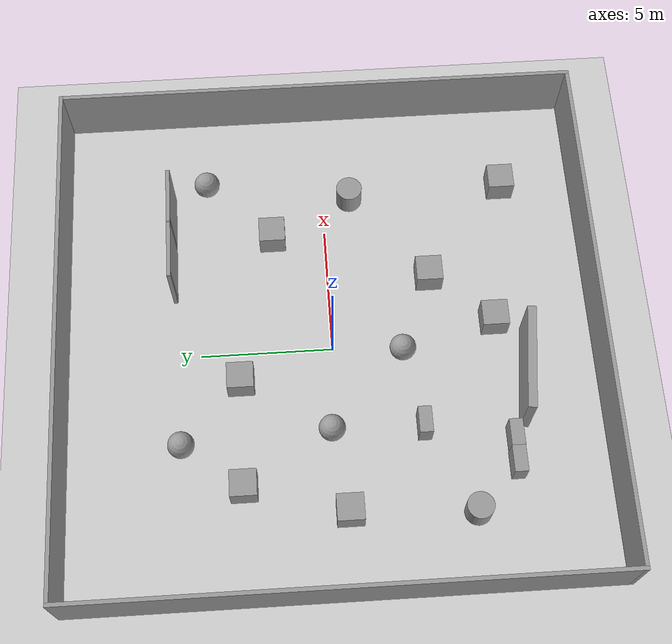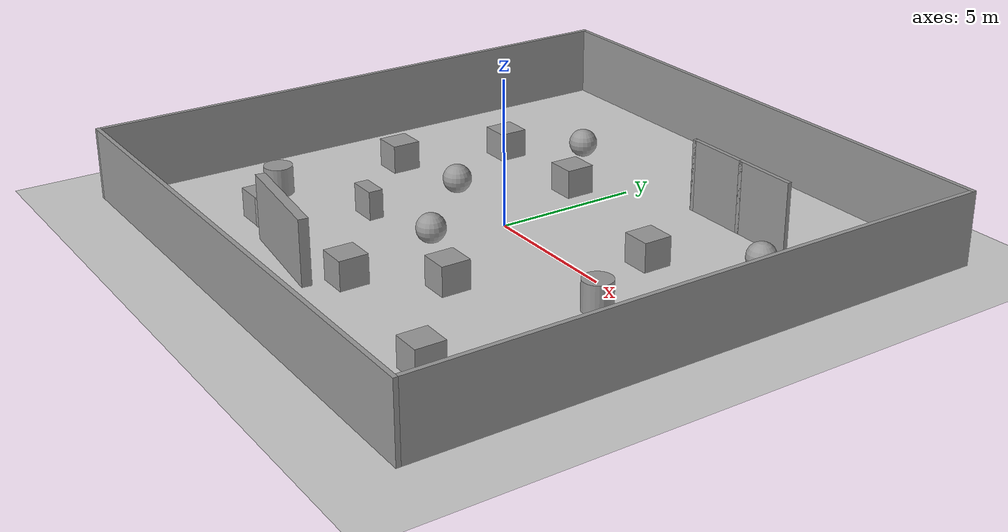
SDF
<sdf version="1.7">
 <world name="default">
  <light name="sun" type="directional">
   <pose>0 0 10 0 -0 0</pose>
   <diffuse>0.8 0.8 0.8 1</diffuse>
   <specular>0.2 0.2 0.2 1</specular>
   <attenuation>
    <range>1000</range>
    <constant>0.9</constant>
    <linear>0.01</linear>
    <quadratic>0.001</quadratic>
   </attenuation>
   <direction>-0.5 0.1 -0.9</direction>
   <spot><inner_angle>0</inner_angle><outer_angle>0</outer_angle><falloff>0</falloff></spot>
  </light>
  <model name="ground_plane">
   <static>1</static>
   <link name="link">
    <collision name="collision">
     <geometry><plane><normal>0 0 1</normal><size>100 100</size></plane></geometry>
     <surface><friction><ode><mu>100</mu><mu2>50</mu2></ode></friction></surface>
    </collision>
    <visual name="visual">
     <cast_shadows>0</cast_shadows>
     <geometry><plane><normal>0 0 1</normal><size>100 100</size></plane></geometry>
     <material>
      <script><uri>file://media/materials/scripts/gazebo.material</uri><name>Gazebo/Grey</name></script>
     </material>
    </visual>
   </link>
  </model>
  <gravity>0 0 -9.8</gravity>
  <magnetic_field>6e-06 2.3e-05 -4.2e-05</magnetic_field>
  <atmosphere type="adiabatic"/>
  <physics type="ode">
   <max_step_size>0.001</max_step_size>
   <real_time_factor>1</real_time_factor>
   <real_time_update_rate>1000</real_time_update_rate>
  </physics>
  <scene><ambient>0.4 0.4 0.4 1</ambient><background>0.7 0.7 0.7 1</background><shadows>1</shadows></scene>
  <spherical_coordinates>
   <surface_model>EARTH_WGS84</surface_model>
   <latitude_deg>0</latitude_deg>
   <longitude_deg>0</longitude_deg>
   <elevation>0</elevation>
   <heading_deg>0</heading_deg>
  </spherical_coordinates>
  <model name="wall_1">
   <link name="Wall_10">
    <pose>9.925 0 0 0 0 -1.5708</pose>
    <visual name="Wall_10_Visual">
     <pose>0 0 1.25 0 -0 0</pose>
     <geometry><box><size>20.25 0.15 2.5</size></box></geometry>
     <material>
      <script><uri>file://media/materials/scripts/gazebo.material</uri><name>Gazebo/Grey</name></script>
      <ambient>1 1 1 1</ambient>
      <shader type="pixel"/>
     </material>
     <meta><layer>0</layer></meta>
    </visual>
    <collision name="Wall_10_Collision">
     <pose>0 0 1.25 0 -0 0</pose>
     <geometry><box><size>20.25 0.15 2.5</size></box></geometry>
     <surface>
      <friction>
       <ode><mu>1</mu><mu2>1</mu2><fdir1>0 0 0</fdir1><slip1>0</slip1><slip2>0</slip2></ode>
       <torsional>
        <coefficient>1</coefficient>
        <patch_radius>0</patch_radius>
        <surface_radius>0</surface_radius>
        <use_patch_radius>1</use_patch_radius>
        <ode><slip>0</slip></ode>
       </torsional>
      </friction>
      <bounce><restitution_coefficient>0</restitution_coefficient><threshold>1e+06</threshold></bounce>
      <contact>
       <collide_without_contact>0</collide_without_contact>
       <collide_without_contact_bitmask>1</collide_without_contact_bitmask>
       <collide_bitmask>1</collide_bitmask>
       <ode>
        <soft_cfm>0</soft_cfm>
        <soft_erp>0.2</soft_erp>
        <kp>1e+13</kp>
        <kd>1</kd>
        <max_vel>0.01</max_vel>
        <min_depth>0</min_depth>
       </ode>
       <bullet>
        <split_impulse>1</split_impulse>
        <split_impulse_penetration_threshold>-0.01</split_impulse_penetration_threshold>
        <soft_cfm>0</soft_cfm>
        <soft_erp>0.2</soft_erp>
        <kp>1e+13</kp>
        <kd>1</kd>
       </bullet>
      </contact>
     </surface>
    </collision>
   </link>
   <link name="Wall_11">
    <pose>0 -10.05 0 0 -0 3.14159</pose>
    <visual name="Wall_11_Visual">
     <pose>0 0 1.25 0 -0 0</pose>
     <geometry><box><size>20 0.15 2.5</size></box></geometry>
     <material>
      <script><uri>file://media/materials/scripts/gazebo.material</uri><name>Gazebo/Grey</name></script>
      <ambient>1 1 1 1</ambient>
      <shader type="pixel"/>
     </material>
     <meta><layer>0</layer></meta>
    </visual>
    <collision name="Wall_11_Collision">
     <pose>0 0 1.25 0 -0 0</pose>
     <geometry><box><size>20 0.15 2.5</size></box></geometry>
     <surface>
      <friction>
       <ode><mu>1</mu><mu2>1</mu2><fdir1>0 0 0</fdir1><slip1>0</slip1><slip2>0</slip2></ode>
       <torsional>
        <coefficient>1</coefficient>
        <patch_radius>0</patch_radius>
        <surface_radius>0</surface_radius>
        <use_patch_radius>1</use_patch_radius>
        <ode><slip>0</slip></ode>
       </torsional>
      </friction>
      <bounce><restitution_coefficient>0</restitution_coefficient><threshold>1e+06</threshold></bounce>
      <contact>
       <collide_without_contact>0</collide_without_contact>
       <collide_without_contact_bitmask>1</collide_without_contact_bitmask>
       <collide_bitmask>1</collide_bitmask>
       <ode>
        <soft_cfm>0</soft_cfm>
        <soft_erp>0.2</soft_erp>
        <kp>1e+13</kp>
        <kd>1</kd>
        <max_vel>0.01</max_vel>
        <min_depth>0</min_depth>
       </ode>
       <bullet>
        <split_impulse>1</split_impulse>
        <split_impulse_penetration_threshold>-0.01</split_impulse_penetration_threshold>
        <soft_cfm>0</soft_cfm>
        <soft_erp>0.2</soft_erp>
        <kp>1e+13</kp>
        <kd>1</kd>
       </bullet>
      </contact>
     </surface>
    </collision>
   </link>
   <link name="Wall_12">
    <pose>-9.925 0 0 0 -0 1.5708</pose>
    <visual name="Wall_12_Visual">
     <pose>0 0 1.25 0 -0 0</pose>
     <geometry><box><size>20.25 0.15 2.5</size></box></geometry>
     <material>
      <script><uri>file://media/materials/scripts/gazebo.material</uri><name>Gazebo/Grey</name></script>
      <ambient>1 1 1 1</ambient>
      <shader type="pixel"/>
     </material>
     <meta><layer>0</layer></meta>
    </visual>
    <collision name="Wall_12_Collision">
     <pose>0 0 1.25 0 -0 0</pose>
     <geometry><box><size>20.25 0.15 2.5</size></box></geometry>
     <surface>
      <friction>
       <ode><mu>1</mu><mu2>1</mu2><fdir1>0 0 0</fdir1><slip1>0</slip1><slip2>0</slip2></ode>
       <torsional>
        <coefficient>1</coefficient>
        <patch_radius>0</patch_radius>
        <surface_radius>0</surface_radius>
        <use_patch_radius>1</use_patch_radius>
        <ode><slip>0</slip></ode>
       </torsional>
      </friction>
      <bounce><restitution_coefficient>0</restitution_coefficient><threshold>1e+06</threshold></bounce>
      <contact>
       <collide_without_contact>0</collide_without_contact>
       <collide_without_contact_bitmask>1</collide_without_contact_bitmask>
       <collide_bitmask>1</collide_bitmask>
       <ode>
        <soft_cfm>0</soft_cfm>
        <soft_erp>0.2</soft_erp>
        <kp>1e+13</kp>
        <kd>1</kd>
        <max_vel>0.01</max_vel>
        <min_depth>0</min_depth>
       </ode>
       <bullet>
        <split_impulse>1</split_impulse>
        <split_impulse_penetration_threshold>-0.01</split_impulse_penetration_threshold>
        <soft_cfm>0</soft_cfm>
        <soft_erp>0.2</soft_erp>
        <kp>1e+13</kp>
        <kd>1</kd>
       </bullet>
      </contact>
     </surface>
    </collision>
   </link>
   <link name="Wall_9">
    <pose>0 10.05 0 0 -0 0</pose>
    <visual name="Wall_9_Visual">
     <pose>0 0 1.25 0 -0 0</pose>
     <geometry><box><size>20 0.15 2.5</size></box></geometry>
     <material>
      <script><uri>file://media/materials/scripts/gazebo.material</uri><name>Gazebo/Grey</name></script>
      <ambient>1 1 1 1</ambient>
      <shader type="pixel"/>
     </material>
     <meta><layer>0</layer></meta>
    </visual>
    <collision name="Wall_9_Collision">
     <pose>0 0 1.25 0 -0 0</pose>
     <geometry><box><size>20 0.15 2.5</size></box></geometry>
     <surface>
      <friction>
       <ode><mu>1</mu><mu2>1</mu2><fdir1>0 0 0</fdir1><slip1>0</slip1><slip2>0</slip2></ode>
       <torsional>
        <coefficient>1</coefficient>
        <patch_radius>0</patch_radius>
        <surface_radius>0</surface_radius>
        <use_patch_radius>1</use_patch_radius>
        <ode><slip>0</slip></ode>
       </torsional>
      </friction>
      <bounce><restitution_coefficient>0</restitution_coefficient><threshold>1e+06</threshold></bounce>
      <contact>
       <collide_without_contact>0</collide_without_contact>
       <collide_without_contact_bitmask>1</collide_without_contact_bitmask>
       <collide_bitmask>1</collide_bitmask>
       <ode>
        <soft_cfm>0</soft_cfm>
        <soft_erp>0.2</soft_erp>
        <kp>1e+13</kp>
        <kd>1</kd>
        <max_vel>0.01</max_vel>
        <min_depth>0</min_depth>
       </ode>
       <bullet>
        <split_impulse>1</split_impulse>
        <split_impulse_penetration_threshold>-0.01</split_impulse_penetration_threshold>
        <soft_cfm>0</soft_cfm>
        <soft_erp>0.2</soft_erp>
        <kp>1e+13</kp>
        <kd>1</kd>
       </bullet>
      </contact>
     </surface>
    </collision>
   </link>
   <static>1</static>
   <pose>0.4353 0.06283 0 0 -0 0</pose>
  </model>
  <model name="wall1">
   <pose>7.22203 7.50057 0 0 -0 0</pose>
   <link name="Wall_0">
    <collision name="Wall_0_Collision">
     <geometry><box><size>2.25 0.15 2.5</size></box></geometry>
     <pose>0 0 1.25 0 -0 0</pose>
    </collision>
    <visual name="Wall_0_Visual">
     <pose>0 0 1.25 0 -0 0</pose>
     <geometry><box><size>2.25 0.15 2.5</size></box></geometry>
     <material>
      <script><uri>file://media/materials/scripts/gazebo.material</uri><name>Gazebo/Grey</name></script>
      <ambient>1 1 1 1</ambient>
     </material>
     <meta><layer>0</layer></meta>
    </visual>
    <pose>-1.5175 -1.5575 0 0 -0 3.14159</pose>
   </link>
   <link name="Wall_1">
    <collision name="Wall_1_Collision">
     <geometry><box><size>0.16 0.15 2.5</size></box></geometry>
     <pose>0 0 1.25 0 -0 0</pose>
    </collision>
    <visual name="Wall_1_Visual">
     <pose>0 0 1.25 0 -0 0</pose>
     <geometry><box><size>0.16 0.15 2.5</size></box></geometry>
     <material>
      <script><uri>file://media/materials/scripts/gazebo.material</uri><name>Gazebo/Grey</name></script>
      <ambient>1 1 1 1</ambient>
     </material>
     <meta><layer>0</layer></meta>
    </visual>
    <pose>-2.5625 -1.5575 0 0 -0 0</pose>
   </link>
   <link name="Wall_2">
    <collision name="Wall_2_Collision">
     <geometry><box><size>0.16 0.15 2.5</size></box></geometry>
     <pose>0 0 1.25 0 -0 0</pose>
    </collision>
    <visual name="Wall_2_Visual">
     <pose>0 0 1.25 0 -0 0</pose>
     <geometry><box><size>0.16 0.15 2.5</size></box></geometry>
     <material>
      <script><uri>file://media/materials/scripts/gazebo.material</uri><name>Gazebo/Grey</name></script>
      <ambient>1 1 1 1</ambient>
     </material>
     <meta><layer>0</layer></meta>
    </visual>
    <pose>-2.5625 -1.5575 0 0 -0 3.14159</pose>
   </link>
   <link name="Wall_3">
    <collision name="Wall_3_Collision">
     <geometry><box><size>0.16 0.15 2.5</size></box></geometry>
     <pose>0 0 1.25 0 -0 0</pose>
    </collision>
    <visual name="Wall_3_Visual">
     <pose>0 0 1.25 0 -0 0</pose>
     <geometry><box><size>0.16 0.15 2.5</size></box></geometry>
     <material>
      <script><uri>file://media/materials/scripts/gazebo.material</uri><name>Gazebo/Grey</name></script>
      <ambient>1 1 1 1</ambient>
     </material>
     <meta><layer>0</layer></meta>
    </visual>
    <pose>-2.5625 -1.5575 0 0 -0 0</pose>
   </link>
   <link name="Wall_4">
    <collision name="Wall_4_Collision">
     <geometry><box><size>0.16 0.15 2.5</size></box></geometry>
     <pose>0 0 1.25 0 -0 0</pose>
    </collision>
    <visual name="Wall_4_Visual">
     <pose>0 0 1.25 0 -0 0</pose>
     <geometry><box><size>0.16 0.15 2.5</size></box></geometry>
     <material>
      <script><uri>file://media/materials/scripts/gazebo.material</uri><name>Gazebo/Grey</name></script>
      <ambient>1 1 1 1</ambient>
     </material>
     <meta><layer>0</layer></meta>
    </visual>
    <pose>-2.5625 -1.5575 0 0 -0 3.14159</pose>
   </link>
   <static>1</static>
  </model>
  <model name="wall1_0">
   <pose>4.97135 7.49918 0 0 -0 0</pose>
   <link name="Wall_0">
    <collision name="Wall_0_Collision">
     <geometry><box><size>2.25 0.15 2.5</size></box></geometry>
     <pose>0 0 1.25 0 -0 0</pose>
    </collision>
    <visual name="Wall_0_Visual">
     <pose>0 0 1.25 0 -0 0</pose>
     <geometry><box><size>2.25 0.15 2.5</size></box></geometry>
     <material>
      <script><uri>file://media/materials/scripts/gazebo.material</uri><name>Gazebo/Grey</name></script>
      <ambient>1 1 1 1</ambient>
     </material>
     <meta><layer>0</layer></meta>
    </visual>
    <pose>-1.5175 -1.5575 0 0 -0 3.14159</pose>
   </link>
   <link name="Wall_1">
    <collision name="Wall_1_Collision">
     <geometry><box><size>0.16 0.15 2.5</size></box></geometry>
     <pose>0 0 1.25 0 -0 0</pose>
    </collision>
    <visual name="Wall_1_Visual">
     <pose>0 0 1.25 0 -0 0</pose>
     <geometry><box><size>0.16 0.15 2.5</size></box></geometry>
     <material>
      <script><uri>file://media/materials/scripts/gazebo.material</uri><name>Gazebo/Grey</name></script>
      <ambient>1 1 1 1</ambient>
     </material>
     <meta><layer>0</layer></meta>
    </visual>
    <pose>-2.5625 -1.5575 0 0 -0 0</pose>
   </link>
   <link name="Wall_2">
    <collision name="Wall_2_Collision">
     <geometry><box><size>0.16 0.15 2.5</size></box></geometry>
     <pose>0 0 1.25 0 -0 0</pose>
    </collision>
    <visual name="Wall_2_Visual">
     <pose>0 0 1.25 0 -0 0</pose>
     <geometry><box><size>0.16 0.15 2.5</size></box></geometry>
     <material>
      <script><uri>file://media/materials/scripts/gazebo.material</uri><name>Gazebo/Grey</name></script>
      <ambient>1 1 1 1</ambient>
     </material>
     <meta><layer>0</layer></meta>
    </visual>
    <pose>-2.5625 -1.5575 0 0 -0 3.14159</pose>
   </link>
   <link name="Wall_3">
    <collision name="Wall_3_Collision">
     <geometry><box><size>0.16 0.15 2.5</size></box></geometry>
     <pose>0 0 1.25 0 -0 0</pose>
    </collision>
    <visual name="Wall_3_Visual">
     <pose>0 0 1.25 0 -0 0</pose>
     <geometry><box><size>0.16 0.15 2.5</size></box></geometry>
     <material>
      <script><uri>file://media/materials/scripts/gazebo.material</uri><name>Gazebo/Grey</name></script>
      <ambient>1 1 1 1</ambient>
     </material>
     <meta><layer>0</layer></meta>
    </visual>
    <pose>-2.5625 -1.5575 0 0 -0 0</pose>
   </link>
   <link name="Wall_4">
    <collision name="Wall_4_Collision">
     <geometry><box><size>0.16 0.15 2.5</size></box></geometry>
     <pose>0 0 1.25 0 -0 0</pose>
    </collision>
    <visual name="Wall_4_Visual">
     <pose>0 0 1.25 0 -0 0</pose>
     <geometry><box><size>0.16 0.15 2.5</size></box></geometry>
     <material>
      <script><uri>file://media/materials/scripts/gazebo.material</uri><name>Gazebo/Grey</name></script>
      <ambient>1 1 1 1</ambient>
     </material>
     <meta><layer>0</layer></meta>
    </visual>
    <pose>-2.5625 -1.5575 0 0 -0 3.14159</pose>
   </link>
   <static>1</static>
  </model>
  <model name="unit_box">
   <pose>-5.27653 3.5466 0.499995 1e-05 -0 0</pose>
   <link name="link">
    <inertial>
     <mass>1</mass>
     <inertia>
      <ixx>0.166667</ixx>
      <ixy>0</ixy>
      <ixz>0</ixz>
      <iyy>0.166667</iyy>
      <iyz>0</iyz>
      <izz>0.166667</izz>
     </inertia>
    </inertial>
    <collision name="collision"><geometry><box><size>1 1 1</size></box></geometry></collision>
    <visual name="visual">
     <geometry><box><size>1 1 1</size></box></geometry>
     <material>
      <script><name>Gazebo/Grey</name><uri>file://media/materials/scripts/gazebo.material</uri></script>
     </material>
    </visual>
   </link>
  </model>
  <model name="unit_box_0">
   <pose>4.83271 2.08253 0.499995 0 -1e-05 0</pose>
   <link name="link">
    <inertial>
     <mass>1</mass>
     <inertia>
      <ixx>0.166667</ixx>
      <ixy>0</ixy>
      <ixz>0</ixz>
      <iyy>0.166667</iyy>
      <iyz>0</iyz>
      <izz>0.166667</izz>
     </inertia>
    </inertial>
    <collision name="collision"><geometry><box><size>1 1 1</size></box></geometry></collision>
    <visual name="visual">
     <geometry><box><size>1 1 1</size></box></geometry>
     <material>
      <script><name>Gazebo/Grey</name><uri>file://media/materials/scripts/gazebo.material</uri></script>
     </material>
    </visual>
   </link>
  </model>
  <model name="unit_box_1">
   <pose>-3.29914 -3.20197 0.5 0 -0 9e-06</pose>
   <link name="link">
    <inertial>
     <mass>1</mass>
     <inertia>
      <ixx>0.166667</ixx>
      <ixy>0</ixy>
      <ixz>0</ixz>
      <iyy>0.166667</iyy>
      <iyz>0</iyz>
      <izz>0.166667</izz>
     </inertia>
    </inertial>
    <collision name="collision"><geometry><box><size>1 0.502356 1</size></box></geometry></collision>
    <visual name="visual">
     <geometry><box><size>1 0.502356 1</size></box></geometry>
     <material>
      <script><name>Gazebo/Grey</name><uri>file://media/materials/scripts/gazebo.material</uri></script>
     </material>
    </visual>
   </link>
  </model>
  <model name="unit_box_2">
   <pose>-6.39092 -0.244497 0.499995 1e-05 -0 0</pose>
   <link name="link">
    <inertial>
     <mass>1</mass>
     <inertia>
      <ixx>0.166667</ixx>
      <ixy>0</ixy>
      <ixz>0</ixz>
      <iyy>0.166667</iyy>
      <iyz>0</iyz>
      <izz>0.166667</izz>
     </inertia>
    </inertial>
    <collision name="collision"><geometry><box><size>1 1 1</size></box></geometry></collision>
    <visual name="visual">
     <geometry><box><size>1 1 1</size></box></geometry>
     <material>
      <script><name>Gazebo/Grey</name><uri>file://media/materials/scripts/gazebo.material</uri></script>
     </material>
    </visual>
   </link>
  </model>
  <model name="unit_sphere_0">
   <pose>-0.237834 -2.64857 0.5 0 -0 0</pose>
   <link name="link">
    <inertial>
     <mass>1</mass>
     <inertia><ixx>0.1</ixx><ixy>0</ixy><ixz>0</ixz><iyy>0.1</iyy><iyz>0</iyz><izz>0.1</izz></inertia>
    </inertial>
    <collision name="collision"><geometry><sphere><radius>0.5</radius></sphere></geometry></collision>
    <visual name="visual">
     <geometry><sphere><radius>0.5</radius></sphere></geometry>
     <material>
      <script><name>Gazebo/Grey</name><uri>file://media/materials/scripts/gazebo.material</uri></script>
     </material>
    </visual>
   </link>
  </model>
  <model name="unit_cylinder">
   <pose>-6.62429 -4.8685 0.499998 3e-06 -2e-06 0</pose>
   <link name="link">
    <inertial>
     <mass>1</mass>
     <inertia><ixx>0.145833</ixx><ixy>0</ixy><ixz>0</ixz><iyy>0.145833</iyy><iyz>0</iyz><izz>0.125</izz></inertia>
    </inertial>
    <collision name="collision">
     <geometry><cylinder><radius>0.5</radius><length>1</length></cylinder></geometry>
    </collision>
    <visual name="visual">
     <geometry><cylinder><radius>0.5</radius><length>1</length></cylinder></geometry>
     <material>
      <script><name>Gazebo/Grey</name><uri>file://media/materials/scripts/gazebo.material</uri></script>
     </material>
    </visual>
   </link>
  </model>
  <model name="unit_box_4">
   <pose>0.786983 -6.22573 0.499995 1e-05 -0 0</pose>
   <link name="link">
    <inertial>
     <mass>1</mass>
     <inertia>
      <ixx>0.166667</ixx>
      <ixy>0</ixy>
      <ixz>0</ixz>
      <iyy>0.166667</iyy>
      <iyz>0</iyz>
      <izz>0.166667</izz>
     </inertia>
    </inertial>
    <collision name="collision"><geometry><box><size>1 1 1</size></box></geometry></collision>
    <visual name="visual">
     <geometry><box><size>1 1 1</size></box></geometry>
     <material>
      <script><name>Gazebo/Grey</name><uri>file://media/materials/scripts/gazebo.material</uri></script>
     </material>
    </visual>
   </link>
  </model>
  <model name="unit_sphere_1">
   <pose>7.2251 4.59302 0.5 0 -0 0</pose>
   <link name="link">
    <inertial>
     <mass>1</mass>
     <inertia><ixx>0.1</ixx><ixy>0</ixy><ixz>0</ixz><iyy>0.1</iyy><iyz>0</iyz><izz>0.1</izz></inertia>
    </inertial>
    <collision name="collision"><geometry><sphere><radius>0.5</radius></sphere></geometry></collision>
    <visual name="visual">
     <geometry><sphere><radius>0.5</radius></sphere></geometry>
     <material>
      <script><name>Gazebo/Grey</name><uri>file://media/materials/scripts/gazebo.material</uri></script>
     </material>
    </visual>
   </link>
  </model>
  <model name="unit_sphere_2">
   <pose>-3.2679 0.215733 0.5 0 -0 0</pose>
   <link name="link">
    <inertial>
     <mass>1</mass>
     <inertia><ixx>0.1</ixx><ixy>0</ixy><ixz>0</ixz><iyy>0.1</iyy><iyz>0</iyz><izz>0.1</izz></inertia>
    </inertial>
    <collision name="collision"><geometry><sphere><radius>0.5</radius></sphere></geometry></collision>
    <visual name="visual">
     <geometry><sphere><radius>0.5</radius></sphere></geometry>
     <material>
      <script><name>Gazebo/Grey</name><uri>file://media/materials/scripts/gazebo.material</uri></script>
     </material>
    </visual>
   </link>
  </model>
  <model name="unit_box_6">
   <pose>6.66623 -7.09157 0.499995 0 -1e-05 0</pose>
   <link name="link">
    <inertial>
     <mass>1</mass>
     <inertia>
      <ixx>0.166667</ixx>
      <ixy>0</ixy>
      <ixz>0</ixz>
      <iyy>0.166667</iyy>
      <iyz>0</iyz>
      <izz>0.166667</izz>
     </inertia>
    </inertial>
    <collision name="collision"><geometry><box><size>1 1 1</size></box></geometry></collision>
    <visual name="visual">
     <geometry><box><size>1 1 1</size></box></geometry>
     <material>
      <script><name>Gazebo/Grey</name><uri>file://media/materials/scripts/gazebo.material</uri></script>
     </material>
    </visual>
   </link>
  </model>
  <model name="unit_cylinder_0">
   <pose>6.43888 -1.04472 0.499992 -3e-06 2e-06 0</pose>
   <link name="link">
    <inertial>
     <mass>1</mass>
     <inertia><ixx>0.145833</ixx><ixy>0</ixy><ixz>0</ixz><iyy>0.145833</iyy><iyz>0</iyz><izz>0.125</izz></inertia>
    </inertial>
    <collision name="collision">
     <geometry><cylinder><radius>0.5</radius><length>1</length></cylinder></geometry>
    </collision>
    <visual name="visual">
     <geometry><cylinder><radius>0.5</radius><length>1</length></cylinder></geometry>
     <material>
      <script><name>Gazebo/Grey</name><uri>file://media/materials/scripts/gazebo.material</uri></script>
     </material>
    </visual>
   </link>
  </model>
  <model name="unit_box_1_clone">
   <pose>-4.98465 -6.47327 0.5 0 -0 0.000899</pose>
   <link name="link">
    <inertial>
     <mass>1</mass>
     <inertia>
      <ixx>0.166667</ixx>
      <ixy>0</ixy>
      <ixz>0</ixz>
      <iyy>0.166667</iyy>
      <iyz>0</iyz>
      <izz>0.166667</izz>
     </inertia>
    </inertial>
    <collision name="collision"><geometry><box><size>1 0.502356 1</size></box></geometry></collision>
    <visual name="visual">
     <geometry><box><size>1 0.502356 1</size></box></geometry>
     <material>
      <script><name>Gazebo/Grey</name><uri>file://media/materials/scripts/gazebo.material</uri></script>
     </material>
    </visual>
   </link>
  </model>
  <model name="unit_box_1_clone_0">
   <pose>-3.98451 -6.48574 0.5 0 -0 0.000813</pose>
   <link name="link">
    <inertial>
     <mass>1</mass>
     <inertia>
      <ixx>0.166667</ixx>
      <ixy>0</ixy>
      <ixz>0</ixz>
      <iyy>0.166667</iyy>
      <iyz>0</iyz>
      <izz>0.166667</izz>
     </inertia>
    </inertial>
    <collision name="collision"><geometry><box><size>1 0.502356 1</size></box></geometry></collision>
    <visual name="visual">
     <geometry><box><size>1 0.502356 1</size></box></geometry>
     <material>
      <script><name>Gazebo/Grey</name><uri>file://media/materials/scripts/gazebo.material</uri></script>
     </material>
    </visual>
   </link>
  </model>
  <model name="unit_box_3_clone_clone">
   <pose>2.79819 -3.89636 0.499995 1e-05 -0 0</pose>
   <link name="link">
    <inertial>
     <mass>1</mass>
     <inertia>
      <ixx>0.166667</ixx>
      <ixy>0</ixy>
      <ixz>0</ixz>
      <iyy>0.166667</iyy>
      <iyz>0</iyz>
      <izz>0.166667</izz>
     </inertia>
    </inertial>
    <collision name="collision"><geometry><box><size>1 1 1</size></box></geometry></collision>
    <visual name="visual">
     <geometry><box><size>1 1 1</size></box></geometry>
     <material>
      <script><name>Gazebo/Grey</name><uri>file://media/materials/scripts/gazebo.material</uri></script>
     </material>
    </visual>
   </link>
  </model>
  <model name="unit_box_3_clone_clone_clone_clone">
   <pose>-1.54514 -7.15063 1.11083 7e-06 -0.000114 -0.118271</pose>
   <link name="link">
    <inertial>
     <mass>1</mass>
     <inertia>
      <ixx>0.166667</ixx>
      <ixy>0</ixy>
      <ixz>0</ixz>
      <iyy>0.166667</iyy>
      <iyz>0</iyz>
      <izz>0.166667</izz>
     </inertia>
    </inertial>
    <collision name="collision"><geometry><box><size>3.9411 0.330837 2.2221</size></box></geometry></collision>
    <visual name="visual">
     <geometry><box><size>3.9411 0.330837 2.2221</size></box></geometry>
     <material>
      <script><name>Gazebo/Grey</name><uri>file://media/materials/scripts/gazebo.material</uri></script>
     </material>
    </visual>
   </link>
  </model>
  <model name="unit_sphere_clone_clone">
   <pose>-3.59703 5.78689 0.5 0.000117 -0.003832 2.2e-05</pose>
   <link name="link">
    <inertial>
     <mass>1</mass>
     <inertia><ixx>0.1</ixx><ixy>0</ixy><ixz>0</ixz><iyy>0.1</iyy><iyz>0</iyz><izz>0.1</izz></inertia>
    </inertial>
    <collision name="collision"><geometry><sphere><radius>0.5</radius></sphere></geometry></collision>
    <visual name="visual">
     <geometry><sphere><radius>0.5</radius></sphere></geometry>
     <material>
      <script><name>Gazebo/Grey</name><uri>file://media/materials/scripts/gazebo.material</uri></script>
     </material>
    </visual>
   </link>
  </model>
  <model name="unit_box_5_clone_clone">
   <pose>-1.15273 3.52408 0.499995 -1e-05 0 0</pose>
   <link name="link">
    <inertial>
     <mass>1</mass>
     <inertia>
      <ixx>0.166667</ixx>
      <ixy>0</ixy>
      <ixz>0</ixz>
      <iyy>0.166667</iyy>
      <iyz>0</iyz>
      <izz>0.166667</izz>
     </inertia>
    </inertial>
    <collision name="collision"><geometry><box><size>1 1 1</size></box></geometry></collision>
    <visual name="visual">
     <geometry><box><size>1 1 1</size></box></geometry>
     <material>
      <script><name>Gazebo/Grey</name><uri>file://media/materials/scripts/gazebo.material</uri></script>
     </material>
    </visual>
   </link>
  </model>
 </world>
</sdf>
